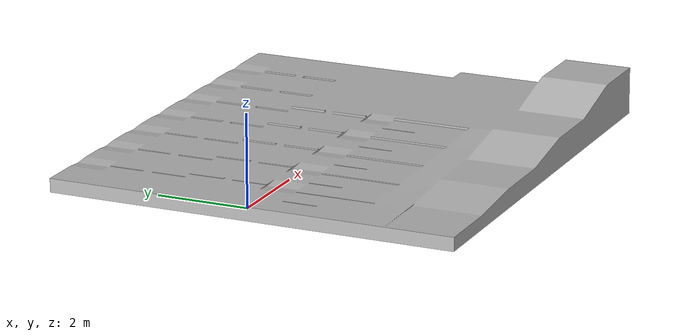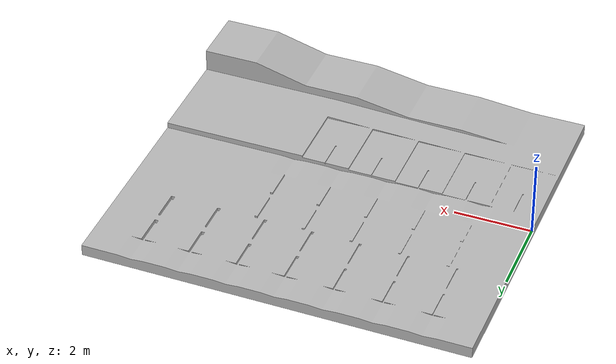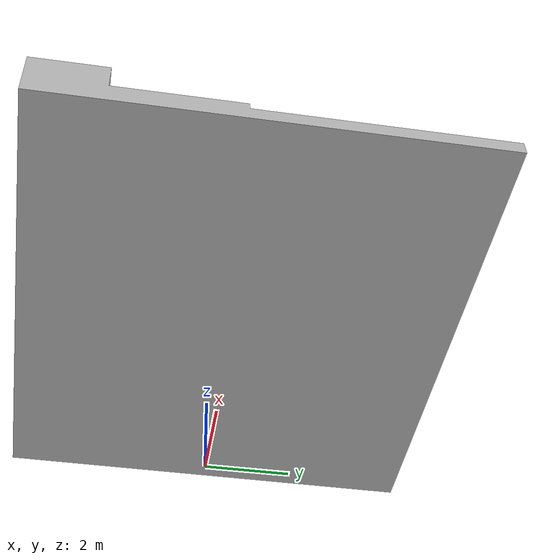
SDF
<?xml version='1.0'?>
<sdf version="1.4">
<model name="robotnik_test_ground_v1">
  <pose>0 0 0 0 0 0</pose>
  <static>true</static>

    <link name='robotnik_test_ground_v1'>
	<pose> 0 0 0.030 0 0 0</pose>
		<inertial>
			<mass>0.000001</mass>
		</inertial>
		<collision name="collision">
			<geometry>
			<mesh>
				<uri>model://robotnik_test_ground_v1/meshes/robotnik_test_ground_v1.stl</uri>
			</mesh>
			</geometry>
			<surface>
			  <friction>
				<ode>
					<mu>100</mu>
					<mu2>100</mu2>
				</ode>
			  </friction>
              <bounce>
                <restitution_coefficient>0.5</restitution_coefficient>
                <threshold>0</threshold>
              </bounce>
              <contact>
                <ode>
                  <max_vel>10</max_vel>
                </ode>
              </contact>
            </surface>
		</collision>
		<visual name="visual">
			<geometry>
				<mesh>
					<uri>model://robotnik_test_ground_v1/meshes/robotnik_test_ground_v1.stl</uri>
				</mesh>
			</geometry>
			<material>
				<script>
					<uri>model://robotnik_test_ground_v1/materials/scripts</uri>
					<uri>model://robotnik_test_ground_v1/materials/textures</uri>
					<name>Gazebo/TestGround</name>
				</script>
			</material>
			<transparency>0</transparency>
			<cast_shadows>1</cast_shadows>
		</visual>
	</link>

  </model>
</sdf>
